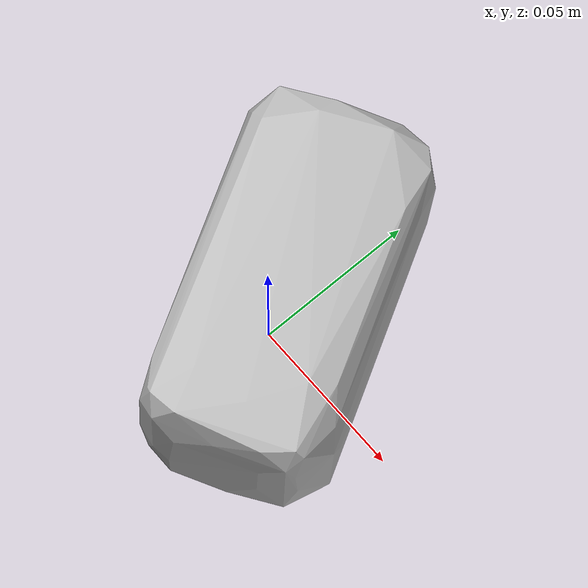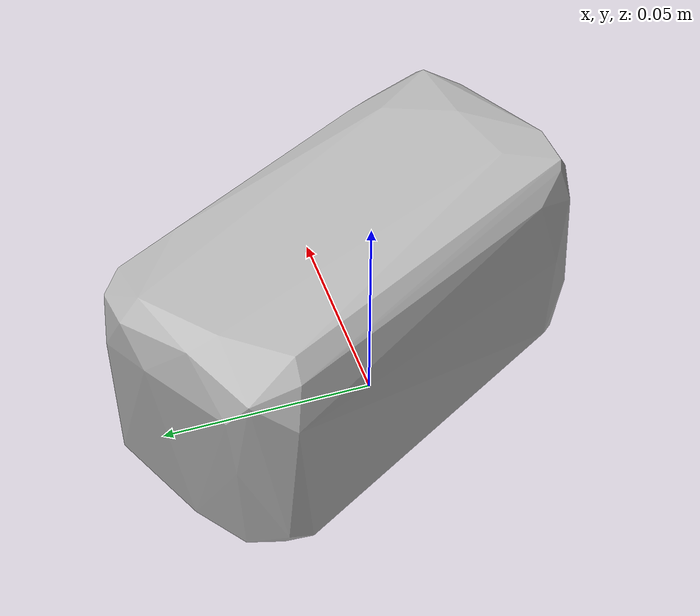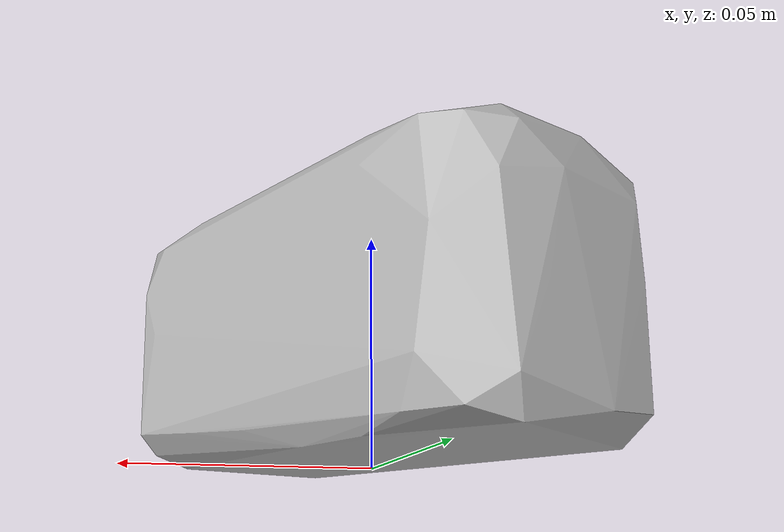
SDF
<?xml version='1.0'?>
<sdf version="1.4">
  <model name="advil_liqui_gels">
    <static>false</static>
    <link name="link">
      <inertial>
        <pose>0.003238033463420273 0.005744709758608772 0.02864102805150956 1.653072986736072 -1.505871155731442 -2.7229536053607615</pose>
        <mass>0.030456724167062986</mass>
        <inertia>
          <ixx>3.803520042755485e-05</ixx>
          <ixy>6.0319087514452395e-22</ixy>
          <ixz>8.715563148573174e-23</ixz>
          <iyy>3.483198583097978e-05</iyy>
          <iyz>8.992935528008071e-22</iyz>
          <izz>1.4453029199392528e-05</izz>
        </inertia>
      </inertial>
      <collision name="collision">
        <geometry>
          <mesh>
            <!-- Use a downsampled mesh for collisions -->
            <uri>model:///advil_liqui_gels/advil_liqui_gels_250_collision.obj</uri>
	        </mesh>
        </geometry>
        <surface>
      </surface>
      </collision>
      <visual name="visual">
        <geometry>
          <mesh>
            <uri>model:///advil_liqui_gels/optimized_tsdf_texture_mapped_mesh.obj</uri>
	        </mesh>
        </geometry>
        <material>
          <script>
            <uri>model:///advil_liqui_gels/advil_liqui_gels.material</uri>
            <name>advil_liqui_gels</name>
          </script>
        </material>
      </visual>
    </link>
  </model>
</sdf>
